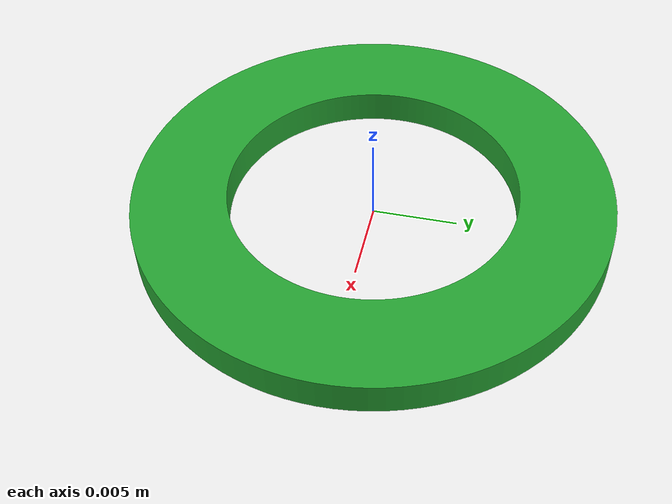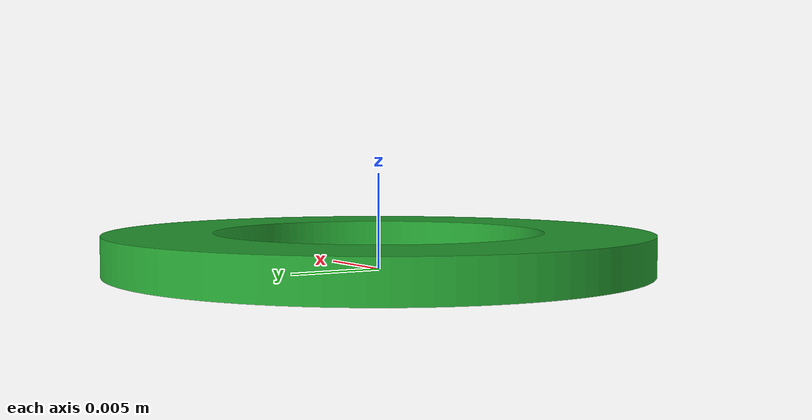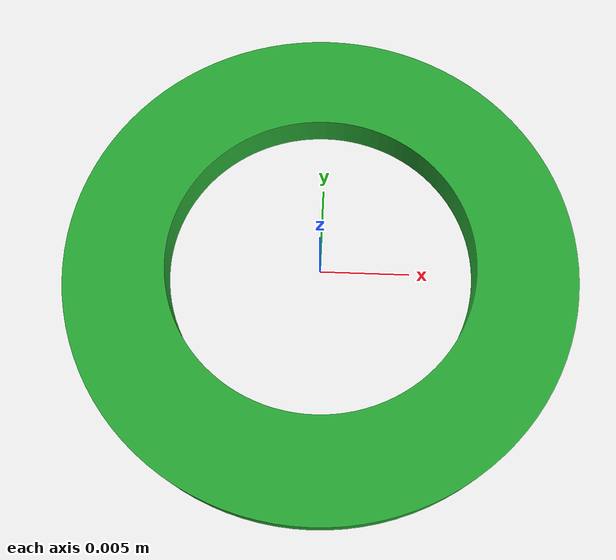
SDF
<?xml version="1.0"?>
<sdf version="1.4">
         <model name="washer_1_x_8.5">
             <static>true</static>
             <link name="link">
                 <pose>0 0 0 0 0 0</pose>
                 <inertial>
                     <pose>-0.0 0.0 0.001 0 0 0 </pose>
                     <mass>1e-06</mass>
                     <inertia>
                         <ixx>5.233450891e-11</ixx>
                         <ixy>-0.0</ixy>
                         <ixz>-0.0</ixz>
                         <iyy>5.233450891e-11</iyy>
                         <iyz>-0.0</iyz>
                         <izz>1.0415099576e-10</izz>
                     </inertia>
                 </inertial>

                 <visual name="visual">
                     <geometry>
                         <mesh>
                             <uri>model://washer_1_x_8.5/meshes/washer_1_x_8.5.stl</uri>
                         </mesh>
                     </geometry>
                     <material>
                         <script>
                             <uri>file://media/materials/scripts/gazebo.material</uri>
                             <name>Gazebo/Green</name>
                         </script>
                     </material>
                 </visual>

                 <collision name="collision">
                     <geometry>
                         <mesh>
                             <uri>model://washer_1_x_8.5/meshes/washer_1_x_8.5.stl</uri>
                         </mesh>
                     </geometry>
                 </collision>
             </link>
         </model>
     </sdf>
